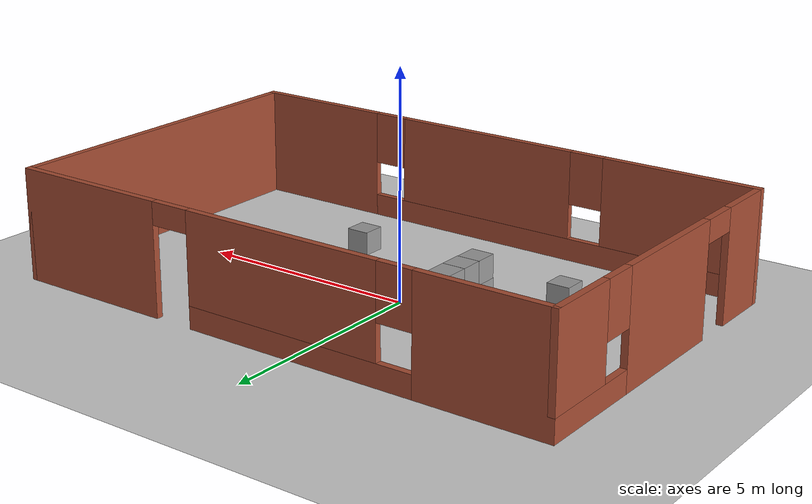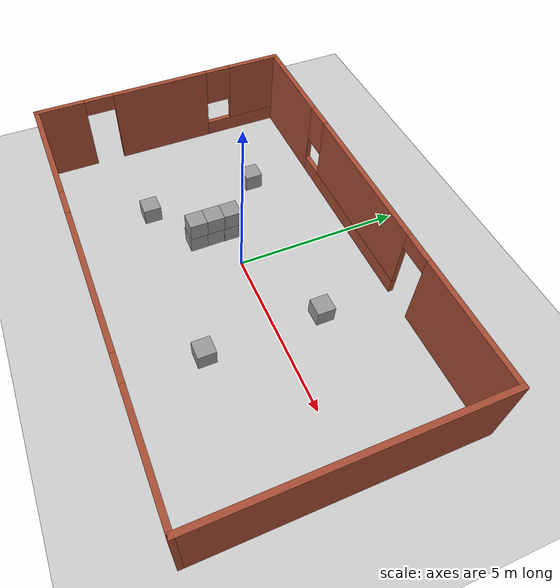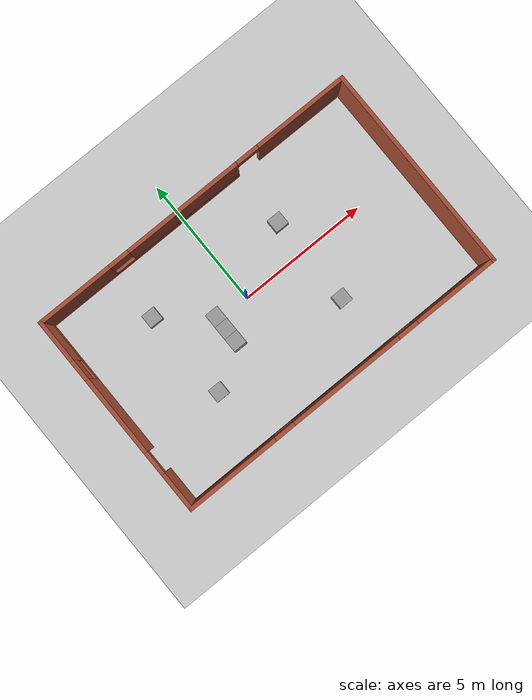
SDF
<sdf version="1.7">
 <world name="default">
  <light name="sun" type="directional">
   <pose>0 0 10 0 -0 0</pose>
   <diffuse>0.8 0.8 0.8 1</diffuse>
   <specular>0.2 0.2 0.2 1</specular>
   <attenuation>
    <range>1000</range>
    <constant>0.9</constant>
    <linear>0.01</linear>
    <quadratic>0.001</quadratic>
   </attenuation>
   <direction>-0.5 0.1 -0.9</direction>
   <spot><inner_angle>0</inner_angle><outer_angle>0</outer_angle><falloff>0</falloff></spot>
  </light>
  <model name="ground_plane">
   <static>1</static>
   <link name="link">
    <collision name="collision">
     <geometry><plane><normal>0 0 1</normal><size>100 100</size></plane></geometry>
     <surface><friction><ode><mu>100</mu><mu2>50</mu2></ode></friction></surface>
    </collision>
    <visual name="visual">
     <cast_shadows>0</cast_shadows>
     <geometry><plane><normal>0 0 1</normal><size>100 100</size></plane></geometry>
     <material>
      <script><uri>file://media/materials/scripts/gazebo.material</uri><name>Gazebo/Grey</name></script>
     </material>
    </visual>
   </link>
  </model>
  <gravity>0 0 -9.8</gravity>
  <magnetic_field>6e-06 2.3e-05 -4.2e-05</magnetic_field>
  <atmosphere type="adiabatic"/>
  <physics type="ode">
   <max_step_size>0.001</max_step_size>
   <real_time_factor>1</real_time_factor>
   <real_time_update_rate>1000</real_time_update_rate>
  </physics>
  <scene><ambient>0.4 0.4 0.4 1</ambient><background>0.7 0.7 0.7 1</background><shadows>1</shadows></scene>
  <audio><device>default</device></audio>
  <spherical_coordinates>
   <surface_model>EARTH_WGS84</surface_model>
   <latitude_deg>0</latitude_deg>
   <longitude_deg>0</longitude_deg>
   <elevation>0</elevation>
   <heading_deg>0</heading_deg>
  </spherical_coordinates>
  <model name="BITS_Lab">
   <pose>0.597769 -0.375465 0 0 -0 0</pose>
   <link name="Wall_4">
    <pose>-6.425 -0 0 0 -0 1.5708</pose>
    <visual name="Wall_4_Visual_0">
     <pose>-3.23429 0 1.25 0 -0 0</pose>
     <geometry><box><size>1.53142 0.15 2.5</size></box></geometry>
     <material>
      <script><uri>file://media/materials/scripts/gazebo.material</uri><name>Gazebo/Bricks</name></script>
      <ambient>1 1 1 1</ambient>
     </material>
     <meta><layer>0</layer></meta>
    </visual>
    <collision name="Wall_4_Collision_0">
     <geometry><box><size>1.53142 0.15 2.5</size></box></geometry>
     <pose>-3.23429 0 1.25 0 -0 0</pose>
    </collision>
    <visual name="Wall_4_Visual_1">
     <pose>-0.034696 0 1.25 0 -0 0</pose>
     <geometry><box><size>3.06777 0.15 2.5</size></box></geometry>
     <material>
      <script><uri>file://media/materials/scripts/gazebo.material</uri><name>Gazebo/Bricks</name></script>
      <ambient>1 1 1 1</ambient>
     </material>
     <meta><layer>0</layer></meta>
    </visual>
    <collision name="Wall_4_Collision_1">
     <geometry><box><size>3.06777 0.15 2.5</size></box></geometry>
     <pose>-0.034696 0 1.25 0 -0 0</pose>
    </collision>
    <visual name="Wall_4_Visual_2">
     <pose>2.74959 0 0.25 0 -0 0</pose>
     <geometry><box><size>2.50081 0.15 0.5</size></box></geometry>
     <material>
      <script><uri>file://media/materials/scripts/gazebo.material</uri><name>Gazebo/Bricks</name></script>
      <ambient>1 1 1 1</ambient>
     </material>
     <meta><layer>0</layer></meta>
    </visual>
    <collision name="Wall_4_Collision_2">
     <geometry><box><size>2.50081 0.15 0.5</size></box></geometry>
     <pose>2.74959 0 0.25 0 -0 0</pose>
    </collision>
    <visual name="Wall_4_Visual_3">
     <pose>3.1496 0 1.5 0 -0 0</pose>
     <geometry><box><size>1.70081 0.15 2</size></box></geometry>
     <material>
      <script><uri>file://media/materials/scripts/gazebo.material</uri><name>Gazebo/Bricks</name></script>
      <ambient>1 1 1 1</ambient>
     </material>
     <meta><layer>0</layer></meta>
    </visual>
    <collision name="Wall_4_Collision_3">
     <geometry><box><size>1.70081 0.15 2</size></box></geometry>
     <pose>3.1496 0 1.5 0 -0 0</pose>
    </collision>
    <visual name="Wall_4_Visual_4">
     <pose>1.89919 0 1.9 0 -0 0</pose>
     <geometry><box><size>0.8 0.15 1.2</size></box></geometry>
     <material>
      <script><uri>file://media/materials/scripts/gazebo.material</uri><name>Gazebo/Bricks</name></script>
      <ambient>1 1 1 1</ambient>
     </material>
     <meta><layer>0</layer></meta>
    </visual>
    <collision name="Wall_4_Collision_4">
     <geometry><box><size>0.8 0.15 1.2</size></box></geometry>
     <pose>1.89919 0 1.9 0 -0 0</pose>
    </collision>
    <visual name="Wall_4_Visual_5">
     <pose>-2.01858 0 2.25 0 -0 0</pose>
     <geometry><box><size>0.9 0.15 0.5</size></box></geometry>
     <material>
      <script><uri>file://media/materials/scripts/gazebo.material</uri><name>Gazebo/Bricks</name></script>
      <ambient>1 1 1 1</ambient>
     </material>
     <meta><layer>0</layer></meta>
    </visual>
    <collision name="Wall_4_Collision_5">
     <geometry><box><size>0.9 0.15 0.5</size></box></geometry>
     <pose>-2.01858 0 2.25 0 -0 0</pose>
    </collision>
   </link>
   <link name="Wall_5">
    <pose>0 3.925 0 0 -0 0</pose>
    <visual name="Wall_5_Visual_0">
     <pose>-5.00969 0 1.25 0 -0 0</pose>
     <geometry><box><size>2.98062 0.15 2.5</size></box></geometry>
     <material>
      <script><uri>file://media/materials/scripts/gazebo.material</uri><name>Gazebo/Bricks</name></script>
      <ambient>1 1 1 1</ambient>
     </material>
     <meta><layer>0</layer></meta>
    </visual>
    <collision name="Wall_5_Collision_0">
     <geometry><box><size>2.98062 0.15 2.5</size></box></geometry>
     <pose>-5.00969 0 1.25 0 -0 0</pose>
    </collision>
    <visual name="Wall_5_Visual_1">
     <pose>4.65251 0 1.25 0 -0 0</pose>
     <geometry><box><size>3.69499 0.15 2.5</size></box></geometry>
     <material>
      <script><uri>file://media/materials/scripts/gazebo.material</uri><name>Gazebo/Bricks</name></script>
      <ambient>1 1 1 1</ambient>
     </material>
     <meta><layer>0</layer></meta>
    </visual>
    <collision name="Wall_5_Collision_1">
     <geometry><box><size>3.69499 0.15 2.5</size></box></geometry>
     <pose>4.65251 0 1.25 0 -0 0</pose>
    </collision>
    <visual name="Wall_5_Visual_2">
     <pose>-0.807183 0 0.25 0 -0 0</pose>
     <geometry><box><size>5.42439 0.15 0.5</size></box></geometry>
     <material>
      <script><uri>file://media/materials/scripts/gazebo.material</uri><name>Gazebo/Bricks</name></script>
      <ambient>1 1 1 1</ambient>
     </material>
     <meta><layer>0</layer></meta>
    </visual>
    <collision name="Wall_5_Collision_2">
     <geometry><box><size>5.42439 0.15 0.5</size></box></geometry>
     <pose>-0.807183 0 0.25 0 -0 0</pose>
    </collision>
    <visual name="Wall_5_Visual_3">
     <pose>-0.407183 0 1.5 0 -0 0</pose>
     <geometry><box><size>4.62439 0.15 2</size></box></geometry>
     <material>
      <script><uri>file://media/materials/scripts/gazebo.material</uri><name>Gazebo/Bricks</name></script>
      <ambient>1 1 1 1</ambient>
     </material>
     <meta><layer>0</layer></meta>
    </visual>
    <collision name="Wall_5_Collision_3">
     <geometry><box><size>4.62439 0.15 2</size></box></geometry>
     <pose>-0.407183 0 1.5 0 -0 0</pose>
    </collision>
    <visual name="Wall_5_Visual_4">
     <pose>-3.11938 0 1.9 0 -0 0</pose>
     <geometry><box><size>0.8 0.15 1.2</size></box></geometry>
     <material>
      <script><uri>file://media/materials/scripts/gazebo.material</uri><name>Gazebo/Bricks</name></script>
      <ambient>1 1 1 1</ambient>
     </material>
     <meta><layer>0</layer></meta>
    </visual>
    <collision name="Wall_5_Collision_4">
     <geometry><box><size>0.8 0.15 1.2</size></box></geometry>
     <pose>-3.11938 0 1.9 0 -0 0</pose>
    </collision>
    <visual name="Wall_5_Visual_5">
     <pose>2.35501 0 2.25 0 -0 0</pose>
     <geometry><box><size>0.9 0.15 0.5</size></box></geometry>
     <material>
      <script><uri>file://media/materials/scripts/gazebo.material</uri><name>Gazebo/Bricks</name></script>
      <ambient>1 1 1 1</ambient>
     </material>
     <meta><layer>0</layer></meta>
    </visual>
    <collision name="Wall_5_Collision_5">
     <geometry><box><size>0.9 0.15 0.5</size></box></geometry>
     <pose>2.35501 0 2.25 0 -0 0</pose>
    </collision>
   </link>
   <link name="Wall_6">
    <collision name="Wall_6_Collision">
     <geometry><box><size>8 0.15 2.5</size></box></geometry>
     <pose>0 0 1.25 0 -0 0</pose>
    </collision>
    <visual name="Wall_6_Visual">
     <pose>0 0 1.25 0 -0 0</pose>
     <geometry><box><size>8 0.15 2.5</size></box></geometry>
     <material>
      <script><uri>file://media/materials/scripts/gazebo.material</uri><name>Gazebo/Bricks</name></script>
      <ambient>1 1 1 1</ambient>
     </material>
     <meta><layer>0</layer></meta>
    </visual>
    <pose>6.425 -0 0 0 -0 -1.5708</pose>
   </link>
   <link name="Wall_7">
    <pose>0 -3.925 0 0 -0 3.14159</pose>
    <visual name="Wall_7_Visual_0">
     <pose>-4.83739 0 1.25 0 -0 0</pose>
     <geometry><box><size>3.32523 0.15 2.5</size></box></geometry>
     <material>
      <script><uri>file://media/materials/scripts/gazebo.material</uri><name>Gazebo/Bricks</name></script>
      <ambient>1 1 1 1</ambient>
     </material>
     <meta><layer>0</layer></meta>
    </visual>
    <collision name="Wall_7_Collision_0">
     <geometry><box><size>3.32523 0.15 2.5</size></box></geometry>
     <pose>-4.83739 0 1.25 0 -0 0</pose>
    </collision>
    <visual name="Wall_7_Visual_1">
     <pose>1.66261 0 0.25 0 -0 0</pose>
     <geometry><box><size>9.67477 0.15 0.5</size></box></geometry>
     <material>
      <script><uri>file://media/materials/scripts/gazebo.material</uri><name>Gazebo/Bricks</name></script>
      <ambient>1 1 1 1</ambient>
     </material>
     <meta><layer>0</layer></meta>
    </visual>
    <collision name="Wall_7_Collision_1">
     <geometry><box><size>9.67477 0.15 0.5</size></box></geometry>
     <pose>1.66261 0 0.25 0 -0 0</pose>
    </collision>
    <visual name="Wall_7_Visual_2">
     <pose>-0.151263 0 1.5 0 -0 0</pose>
     <geometry><box><size>4.44702 0.15 2</size></box></geometry>
     <material>
      <script><uri>file://media/materials/scripts/gazebo.material</uri><name>Gazebo/Bricks</name></script>
      <ambient>1 1 1 1</ambient>
     </material>
     <meta><layer>0</layer></meta>
    </visual>
    <collision name="Wall_7_Collision_2">
     <geometry><box><size>4.44702 0.15 2</size></box></geometry>
     <pose>-0.151263 0 1.5 0 -0 0</pose>
    </collision>
    <visual name="Wall_7_Visual_3">
     <pose>4.68612 0 1.5 0 -0 0</pose>
     <geometry><box><size>3.62775 0.15 2</size></box></geometry>
     <material>
      <script><uri>file://media/materials/scripts/gazebo.material</uri><name>Gazebo/Bricks</name></script>
      <ambient>1 1 1 1</ambient>
     </material>
     <meta><layer>0</layer></meta>
    </visual>
    <collision name="Wall_7_Collision_3">
     <geometry><box><size>3.62775 0.15 2</size></box></geometry>
     <pose>4.68612 0 1.5 0 -0 0</pose>
    </collision>
    <visual name="Wall_7_Visual_4">
     <pose>-2.77477 0 1.9 0 -0 0</pose>
     <geometry><box><size>0.8 0.15 1.2</size></box></geometry>
     <material>
      <script><uri>file://media/materials/scripts/gazebo.material</uri><name>Gazebo/Bricks</name></script>
      <ambient>1 1 1 1</ambient>
     </material>
     <meta><layer>0</layer></meta>
    </visual>
    <collision name="Wall_7_Collision_4">
     <geometry><box><size>0.8 0.15 1.2</size></box></geometry>
     <pose>-2.77477 0 1.9 0 -0 0</pose>
    </collision>
    <visual name="Wall_7_Visual_5">
     <pose>2.47225 0 1.9 0 -0 0</pose>
     <geometry><box><size>0.8 0.15 1.2</size></box></geometry>
     <material>
      <script><uri>file://media/materials/scripts/gazebo.material</uri><name>Gazebo/Bricks</name></script>
      <ambient>1 1 1 1</ambient>
     </material>
     <meta><layer>0</layer></meta>
    </visual>
    <collision name="Wall_7_Collision_5">
     <geometry><box><size>0.8 0.15 1.2</size></box></geometry>
     <pose>2.47225 0 1.9 0 -0 0</pose>
    </collision>
   </link>
   <static>1</static>
  </model>
  <model name="unit_box">
   <pose>-1.24374 0.108516 0.264191 2.4e-05 2.9e-05 -5.5e-05</pose>
   <link name="link">
    <inertial>
     <mass>1</mass>
     <inertia>
      <ixx>0.166667</ixx>
      <ixy>0</ixy>
      <ixz>0</ixz>
      <iyy>0.166667</iyy>
      <iyz>0</iyz>
      <izz>0.166667</izz>
     </inertia>
    </inertial>
    <collision name="collision">
     <geometry><box><size>0.528407 0.528407 0.528407</size></box></geometry>
    </collision>
    <visual name="visual">
     <geometry><box><size>0.528407 0.528407 0.528407</size></box></geometry>
     <material>
      <script><name>Gazebo/Grey</name><uri>file://media/materials/scripts/gazebo.material</uri></script>
     </material>
    </visual>
   </link>
  </model>
  <model name="unit_box_clone">
   <pose>-1.25078 -0.4199 0.264212 1.6e-05 1.6e-05 -6.2e-05</pose>
   <link name="link">
    <inertial>
     <mass>1</mass>
     <inertia>
      <ixx>0.166667</ixx>
      <ixy>0</ixy>
      <ixz>0</ixz>
      <iyy>0.166667</iyy>
      <iyz>0</iyz>
      <izz>0.166667</izz>
     </inertia>
    </inertial>
    <collision name="collision">
     <geometry><box><size>0.528407 0.528407 0.528407</size></box></geometry>
    </collision>
    <visual name="visual">
     <geometry><box><size>0.528407 0.528407 0.528407</size></box></geometry>
     <material>
      <script><name>Gazebo/Grey</name><uri>file://media/materials/scripts/gazebo.material</uri></script>
     </material>
    </visual>
   </link>
  </model>
  <model name="unit_box_clone_0">
   <pose>-1.24238 -0.948482 0.264203 -4e-06 2e-06 -9.7e-05</pose>
   <link name="link">
    <inertial>
     <mass>1</mass>
     <inertia>
      <ixx>0.166667</ixx>
      <ixy>0</ixy>
      <ixz>0</ixz>
      <iyy>0.166667</iyy>
      <iyz>0</iyz>
      <izz>0.166667</izz>
     </inertia>
    </inertial>
    <collision name="collision">
     <geometry><box><size>0.528407 0.528407 0.528407</size></box></geometry>
    </collision>
    <visual name="visual">
     <geometry><box><size>0.528407 0.528407 0.528407</size></box></geometry>
     <material>
      <script><name>Gazebo/Grey</name><uri>file://media/materials/scripts/gazebo.material</uri></script>
     </material>
    </visual>
   </link>
  </model>
  <model name="unit_box_clone_0_clone">
   <pose>-2.80017 -1.89231 0.264203 0 0 -0.000111</pose>
   <link name="link">
    <inertial>
     <mass>1</mass>
     <inertia>
      <ixx>0.166667</ixx>
      <ixy>0</ixy>
      <ixz>0</ixz>
      <iyy>0.166667</iyy>
      <iyz>0</iyz>
      <izz>0.166667</izz>
     </inertia>
    </inertial>
    <collision name="collision">
     <geometry><box><size>0.528407 0.528407 0.528407</size></box></geometry>
    </collision>
    <visual name="visual">
     <geometry><box><size>0.528407 0.528407 0.528407</size></box></geometry>
     <material>
      <script><name>Gazebo/Grey</name><uri>file://media/materials/scripts/gazebo.material</uri></script>
     </material>
    </visual>
   </link>
  </model>
  <model name="unit_box_clone_0_clone_0">
   <pose>-2.95944 1.5396 0.264203 0 0 -0.000111</pose>
   <link name="link">
    <inertial>
     <mass>1</mass>
     <inertia>
      <ixx>0.166667</ixx>
      <ixy>0</ixy>
      <ixz>0</ixz>
      <iyy>0.166667</iyy>
      <iyz>0</iyz>
      <izz>0.166667</izz>
     </inertia>
    </inertial>
    <collision name="collision">
     <geometry><box><size>0.528407 0.528407 0.528407</size></box></geometry>
    </collision>
    <visual name="visual">
     <geometry><box><size>0.528407 0.528407 0.528407</size></box></geometry>
     <material>
      <script><name>Gazebo/Grey</name><uri>file://media/materials/scripts/gazebo.material</uri></script>
     </material>
    </visual>
   </link>
  </model>
  <model name="unit_box_clone_0_clone_1">
   <pose>2.48057 1.35062 0.264203 0 0 -0.000111</pose>
   <link name="link">
    <inertial>
     <mass>1</mass>
     <inertia>
      <ixx>0.166667</ixx>
      <ixy>0</ixy>
      <ixz>0</ixz>
      <iyy>0.166667</iyy>
      <iyz>0</iyz>
      <izz>0.166667</izz>
     </inertia>
    </inertial>
    <collision name="collision">
     <geometry><box><size>0.528407 0.528407 0.528407</size></box></geometry>
    </collision>
    <visual name="visual">
     <geometry><box><size>0.528407 0.528407 0.528407</size></box></geometry>
     <material>
      <script><name>Gazebo/Grey</name><uri>file://media/materials/scripts/gazebo.material</uri></script>
     </material>
    </visual>
   </link>
  </model>
  <model name="unit_box_clone_0_clone_2">
   <pose>2.51441 -2.08588 0.264203 0 0 -0.000111</pose>
   <link name="link">
    <inertial>
     <mass>1</mass>
     <inertia>
      <ixx>0.166667</ixx>
      <ixy>0</ixy>
      <ixz>0</ixz>
      <iyy>0.166667</iyy>
      <iyz>0</iyz>
      <izz>0.166667</izz>
     </inertia>
    </inertial>
    <collision name="collision">
     <geometry><box><size>0.528407 0.528407 0.528407</size></box></geometry>
    </collision>
    <visual name="visual">
     <geometry><box><size>0.528407 0.528407 0.528407</size></box></geometry>
     <material>
      <script><name>Gazebo/Grey</name><uri>file://media/materials/scripts/gazebo.material</uri></script>
     </material>
    </visual>
   </link>
  </model>
  <model name="unit_box_clone_1">
   <pose>-1.24518 0.134708 0.792614 0.000144 4.2e-05 -6.8e-05</pose>
   <link name="link">
    <inertial>
     <mass>1</mass>
     <inertia>
      <ixx>0.166667</ixx>
      <ixy>0</ixy>
      <ixz>0</ixz>
      <iyy>0.166667</iyy>
      <iyz>0</iyz>
      <izz>0.166667</izz>
     </inertia>
    </inertial>
    <collision name="collision">
     <geometry><box><size>0.528407 0.528407 0.528407</size></box></geometry>
    </collision>
    <visual name="visual">
     <geometry><box><size>0.528407 0.528407 0.528407</size></box></geometry>
     <material>
      <script><name>Gazebo/Grey</name><uri>file://media/materials/scripts/gazebo.material</uri></script>
     </material>
    </visual>
   </link>
  </model>
  <model name="unit_box_clone_1_clone">
   <pose>-1.24628 -0.393956 0.792613 2.3e-05 6e-06 0.000144</pose>
   <link name="link">
    <inertial>
     <mass>1</mass>
     <inertia>
      <ixx>0.166667</ixx>
      <ixy>0</ixy>
      <ixz>0</ixz>
      <iyy>0.166667</iyy>
      <iyz>0</iyz>
      <izz>0.166667</izz>
     </inertia>
    </inertial>
    <collision name="collision">
     <geometry><box><size>0.528407 0.528407 0.528407</size></box></geometry>
    </collision>
    <visual name="visual">
     <geometry><box><size>0.528407 0.528407 0.528407</size></box></geometry>
     <material>
      <script><name>Gazebo/Grey</name><uri>file://media/materials/scripts/gazebo.material</uri></script>
     </material>
    </visual>
   </link>
  </model>
  <model name="unit_box_clone_1_clone_0">
   <pose>-1.24735 -0.922383 0.792604 3.5e-05 2.3e-05 9.7e-05</pose>
   <link name="link">
    <inertial>
     <mass>1</mass>
     <inertia>
      <ixx>0.166667</ixx>
      <ixy>0</ixy>
      <ixz>0</ixz>
      <iyy>0.166667</iyy>
      <iyz>0</iyz>
      <izz>0.166667</izz>
     </inertia>
    </inertial>
    <collision name="collision">
     <geometry><box><size>0.528407 0.528407 0.528407</size></box></geometry>
    </collision>
    <visual name="visual">
     <geometry><box><size>0.528407 0.528407 0.528407</size></box></geometry>
     <material>
      <script><name>Gazebo/Grey</name><uri>file://media/materials/scripts/gazebo.material</uri></script>
     </material>
    </visual>
   </link>
  </model>
 </world>
</sdf>
